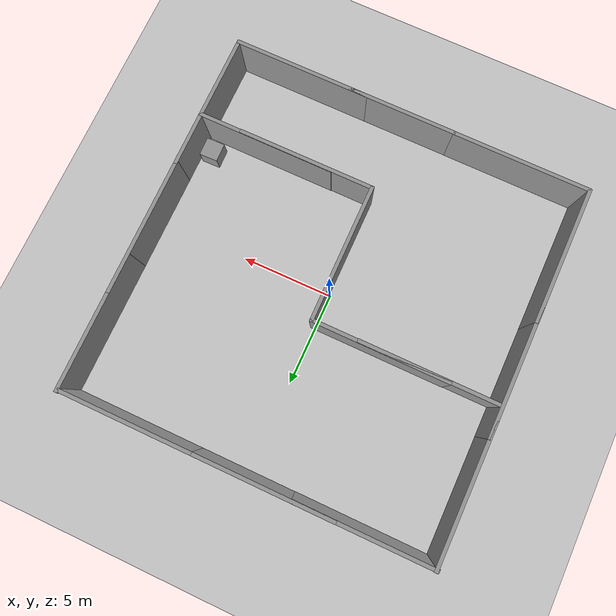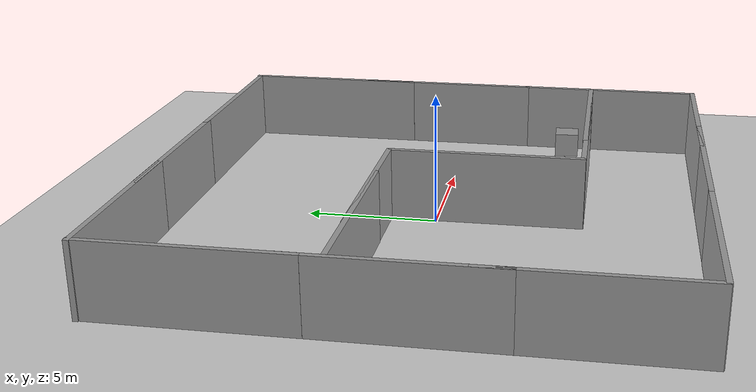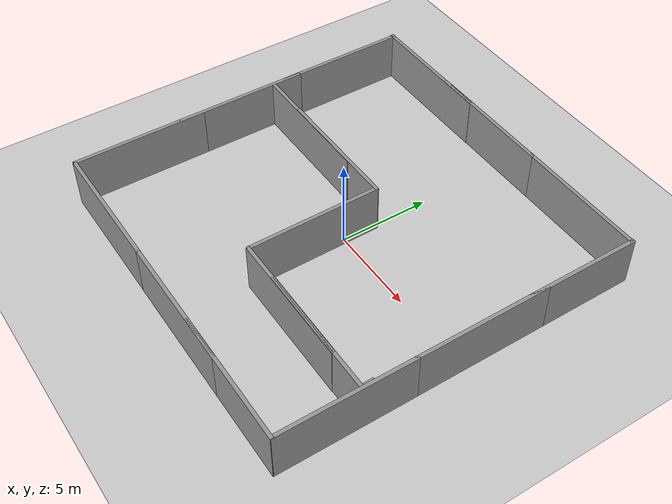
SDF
<sdf version="1.7">
 <world name="default">
  <light name="sun" type="directional">
   <pose>0 0 10 0 -0 0</pose>
   <diffuse>0.8 0.8 0.8 1</diffuse>
   <specular>0.2 0.2 0.2 1</specular>
   <attenuation>
    <range>1000</range>
    <constant>0.9</constant>
    <linear>0.01</linear>
    <quadratic>0.001</quadratic>
   </attenuation>
   <direction>-0.5 0.1 -0.9</direction>
   <spot><inner_angle>0</inner_angle><outer_angle>0</outer_angle><falloff>0</falloff></spot>
  </light>
  <model name="ground_plane">
   <static>1</static>
   <link name="link">
    <collision name="collision">
     <geometry><plane><normal>0 0 1</normal><size>100 100</size></plane></geometry>
     <surface>
      <contact><collide_bitmask>65535</collide_bitmask></contact>
      <friction><ode><mu>100</mu><mu2>50</mu2></ode></friction>
     </surface>
    </collision>
    <visual name="visual">
     <cast_shadows>0</cast_shadows>
     <geometry><plane><normal>0 0 1</normal><size>100 100</size></plane></geometry>
     <material>
      <script><uri>file://media/materials/scripts/gazebo.material</uri><name>Gazebo/Grey</name></script>
     </material>
    </visual>
   </link>
  </model>
  <gravity>0 0 -9.8</gravity>
  <magnetic_field>6e-06 2.3e-05 -4.2e-05</magnetic_field>
  <atmosphere type="adiabatic"/>
  <physics type="ode">
   <max_step_size>0.001</max_step_size>
   <real_time_factor>1</real_time_factor>
   <real_time_update_rate>1000</real_time_update_rate>
  </physics>
  <scene><ambient>0.4 0.4 0.4 1</ambient><background>0.7 0.7 0.7 1</background><shadows>1</shadows></scene>
  <spherical_coordinates>
   <surface_model>EARTH_WGS84</surface_model>
   <latitude_deg>0</latitude_deg>
   <longitude_deg>0</longitude_deg>
   <elevation>0</elevation>
   <heading_deg>0</heading_deg>
  </spherical_coordinates>
  <model name="grey_wall">
   <static>1</static>
   <link name="link">
    <pose>0 0 1.4 0 -0 0</pose>
    <collision name="collision"><geometry><box><size>7.5 0.2 2.8</size></box></geometry></collision>
    <visual name="visual">
     <cast_shadows>0</cast_shadows>
     <geometry><box><size>7.5 0.2 2.8</size></box></geometry>
     <material>
      <script>
       <uri>model://grey_wall/materials/scripts</uri>
       <uri>model://grey_wall/materials/textures</uri>
       <name>vrc/grey_wall</name>
      </script>
     </material>
    </visual>
   </link>
   <pose>-6.05595 1.81297 0 0 -0 0</pose>
  </model>
  <model name="grey_wall_0">
   <static>1</static>
   <link name="link">
    <pose>0 0 1.4 0 -0 0</pose>
    <collision name="collision"><geometry><box><size>7.5 0.2 2.8</size></box></geometry></collision>
    <visual name="visual">
     <cast_shadows>0</cast_shadows>
     <geometry><box><size>7.5 0.2 2.8</size></box></geometry>
     <material>
      <script>
       <uri>model://grey_wall/materials/scripts</uri>
       <uri>model://grey_wall/materials/textures</uri>
       <name>vrc/grey_wall</name>
      </script>
     </material>
    </visual>
   </link>
   <pose>-9.90034 6.29751 0 0 0 -1.57131</pose>
  </model>
  <model name="grey_wall_0_clone">
   <static>1</static>
   <link name="link">
    <pose>0 0 1.4 0 -0 0</pose>
    <collision name="collision"><geometry><box><size>7.5 0.2 2.8</size></box></geometry></collision>
    <visual name="visual">
     <cast_shadows>0</cast_shadows>
     <geometry><box><size>7.5 0.2 2.8</size></box></geometry>
     <material>
      <script>
       <uri>model://grey_wall/materials/scripts</uri>
       <uri>model://grey_wall/materials/textures</uri>
       <name>vrc/grey_wall</name>
      </script>
     </material>
    </visual>
   </link>
   <pose>-9.90034 -0.205896 0 0 0 -1.57131</pose>
  </model>
  <model name="grey_wall_0_clone_clone">
   <static>1</static>
   <link name="link">
    <pose>0 0 1.4 0 -0 0</pose>
    <collision name="collision"><geometry><box><size>7.5 0.2 2.8</size></box></geometry></collision>
    <visual name="visual">
     <cast_shadows>0</cast_shadows>
     <geometry><box><size>7.5 0.2 2.8</size></box></geometry>
     <material>
      <script>
       <uri>model://grey_wall/materials/scripts</uri>
       <uri>model://grey_wall/materials/textures</uri>
       <name>vrc/grey_wall</name>
      </script>
     </material>
    </visual>
   </link>
   <pose>-9.90034 -6.30135 0 0 0 -1.57131</pose>
  </model>
  <model name="grey_wall_clone">
   <static>1</static>
   <link name="link">
    <pose>0 0 1.4 0 -0 0</pose>
    <collision name="collision"><geometry><box><size>7.5 0.2 2.8</size></box></geometry></collision>
    <visual name="visual">
     <cast_shadows>0</cast_shadows>
     <geometry><box><size>7.5 0.2 2.8</size></box></geometry>
     <material>
      <script>
       <uri>model://grey_wall/materials/scripts</uri>
       <uri>model://grey_wall/materials/textures</uri>
       <name>vrc/grey_wall</name>
      </script>
     </material>
    </visual>
   </link>
   <pose>0.153536 -1.87302 -0 0 0 -1.56529</pose>
  </model>
  <model name="grey_wall_clone_0">
   <static>1</static>
   <link name="link">
    <pose>0 0 1.4 0 -0 0</pose>
    <collision name="collision"><geometry><box><size>7.5 0.2 2.8</size></box></geometry></collision>
    <visual name="visual">
     <cast_shadows>0</cast_shadows>
     <geometry><box><size>7.5 0.2 2.8</size></box></geometry>
     <material>
      <script>
       <uri>model://grey_wall/materials/scripts</uri>
       <uri>model://grey_wall/materials/textures</uri>
       <name>vrc/grey_wall</name>
      </script>
     </material>
    </visual>
   </link>
   <pose>6.15242 -5.51962 0 0 -0 0</pose>
  </model>
  <model name="grey_wall_clone_1">
   <static>1</static>
   <link name="link">
    <pose>0 0 1.4 0 -0 0</pose>
    <collision name="collision"><geometry><box><size>7.5 0.2 2.8</size></box></geometry></collision>
    <visual name="visual">
     <cast_shadows>0</cast_shadows>
     <geometry><box><size>7.5 0.2 2.8</size></box></geometry>
     <material>
      <script>
       <uri>model://grey_wall/materials/scripts</uri>
       <uri>model://grey_wall/materials/textures</uri>
       <name>vrc/grey_wall</name>
      </script>
     </material>
    </visual>
   </link>
   <pose>-6.18766 -9.98541 0 0 -0 0</pose>
  </model>
  <model name="grey_wall_clone_2">
   <static>1</static>
   <link name="link">
    <pose>0 0 1.4 0 -0 0</pose>
    <collision name="collision"><geometry><box><size>7.5 0.2 2.8</size></box></geometry></collision>
    <visual name="visual">
     <cast_shadows>0</cast_shadows>
     <geometry><box><size>7.5 0.2 2.8</size></box></geometry>
     <material>
      <script>
       <uri>model://grey_wall/materials/scripts</uri>
       <uri>model://grey_wall/materials/textures</uri>
       <name>vrc/grey_wall</name>
      </script>
     </material>
    </visual>
   </link>
   <pose>1.21365 -9.99395 0 0 -0 0</pose>
  </model>
  <model name="grey_wall_clone_3">
   <static>1</static>
   <link name="link">
    <pose>0 0 1.4 0 -0 0</pose>
    <collision name="collision"><geometry><box><size>7.5 0.2 2.8</size></box></geometry></collision>
    <visual name="visual">
     <cast_shadows>0</cast_shadows>
     <geometry><box><size>7.5 0.2 2.8</size></box></geometry>
     <material>
      <script>
       <uri>model://grey_wall/materials/scripts</uri>
       <uri>model://grey_wall/materials/textures</uri>
       <name>vrc/grey_wall</name>
      </script>
     </material>
    </visual>
   </link>
   <pose>6.15418 -9.99373 0 0 -0 0</pose>
  </model>
  <model name="grey_wall_clone_0_clone">
   <static>1</static>
   <link name="link">
    <pose>0 0 1.4 0 -0 0</pose>
    <collision name="collision"><geometry><box><size>7.5 0.2 2.8</size></box></geometry></collision>
    <visual name="visual">
     <cast_shadows>0</cast_shadows>
     <geometry><box><size>7.5 0.2 2.8</size></box></geometry>
     <material>
      <script>
       <uri>model://grey_wall/materials/scripts</uri>
       <uri>model://grey_wall/materials/textures</uri>
       <name>vrc/grey_wall</name>
      </script>
     </material>
    </visual>
   </link>
   <pose>3.84425 -5.53985 0 0 -0 0</pose>
  </model>
  <model name="grey_wall_clone_0_clone_0">
   <static>1</static>
   <link name="link">
    <pose>0 0 1.4 0 -0 0</pose>
    <collision name="collision"><geometry><box><size>7.5 0.2 2.8</size></box></geometry></collision>
    <visual name="visual">
     <cast_shadows>0</cast_shadows>
     <geometry><box><size>7.5 0.2 2.8</size></box></geometry>
     <material>
      <script>
       <uri>model://grey_wall/materials/scripts</uri>
       <uri>model://grey_wall/materials/textures</uri>
       <name>vrc/grey_wall</name>
      </script>
     </material>
    </visual>
   </link>
   <pose>-3.51777 1.83066 0 0 -0 0</pose>
  </model>
  <model name="grey_wall_0_clone_0">
   <static>1</static>
   <link name="link">
    <pose>0 0 1.4 0 -0 0</pose>
    <collision name="collision"><geometry><box><size>7.5 0.2 2.8</size></box></geometry></collision>
    <visual name="visual">
     <cast_shadows>0</cast_shadows>
     <geometry><box><size>7.5 0.2 2.8</size></box></geometry>
     <material>
      <script>
       <uri>model://grey_wall/materials/scripts</uri>
       <uri>model://grey_wall/materials/textures</uri>
       <name>vrc/grey_wall</name>
      </script>
     </material>
    </visual>
   </link>
   <pose>9.82047 -6.31627 0 0 0 -1.57131</pose>
  </model>
  <model name="grey_wall_0_clone_1">
   <static>1</static>
   <link name="link">
    <pose>0 0 1.4 0 -0 0</pose>
    <collision name="collision"><geometry><box><size>7.5 0.2 2.8</size></box></geometry></collision>
    <visual name="visual">
     <cast_shadows>0</cast_shadows>
     <geometry><box><size>7.5 0.2 2.8</size></box></geometry>
     <material>
      <script>
       <uri>model://grey_wall/materials/scripts</uri>
       <uri>model://grey_wall/materials/textures</uri>
       <name>vrc/grey_wall</name>
      </script>
     </material>
    </visual>
   </link>
   <pose>9.82047 1.02648 0 0 0 -1.57131</pose>
  </model>
  <model name="grey_wall_0_clone_2">
   <static>1</static>
   <link name="link">
    <pose>0 0 1.4 0 -0 0</pose>
    <collision name="collision"><geometry><box><size>7.5 0.2 2.8</size></box></geometry></collision>
    <visual name="visual">
     <cast_shadows>0</cast_shadows>
     <geometry><box><size>7.5 0.2 2.8</size></box></geometry>
     <material>
      <script>
       <uri>model://grey_wall/materials/scripts</uri>
       <uri>model://grey_wall/materials/textures</uri>
       <name>vrc/grey_wall</name>
      </script>
     </material>
    </visual>
   </link>
   <pose>9.82047 6.33268 0 0 0 -1.57131</pose>
  </model>
  <model name="grey_wall_clone_3_clone">
   <static>1</static>
   <link name="link">
    <pose>0 0 1.4 0 -0 0</pose>
    <collision name="collision"><geometry><box><size>7.5 0.2 2.8</size></box></geometry></collision>
    <visual name="visual">
     <cast_shadows>0</cast_shadows>
     <geometry><box><size>7.5 0.2 2.8</size></box></geometry>
     <material>
      <script>
       <uri>model://grey_wall/materials/scripts</uri>
       <uri>model://grey_wall/materials/textures</uri>
       <name>vrc/grey_wall</name>
      </script>
     </material>
    </visual>
   </link>
   <pose>6.07906 9.94242 0 0 -0 0</pose>
  </model>
  <model name="grey_wall_clone_3_clone_0">
   <static>1</static>
   <link name="link">
    <pose>0 0 1.4 0 -0 0</pose>
    <collision name="collision"><geometry><box><size>7.5 0.2 2.8</size></box></geometry></collision>
    <visual name="visual">
     <cast_shadows>0</cast_shadows>
     <geometry><box><size>7.5 0.2 2.8</size></box></geometry>
     <material>
      <script>
       <uri>model://grey_wall/materials/scripts</uri>
       <uri>model://grey_wall/materials/textures</uri>
       <name>vrc/grey_wall</name>
      </script>
     </material>
    </visual>
   </link>
   <pose>-1.11806 9.93965 0 0 -0 0</pose>
  </model>
  <model name="grey_wall_clone_3_clone_1">
   <static>1</static>
   <link name="link">
    <pose>0 0 1.4 0 -0 0</pose>
    <collision name="collision"><geometry><box><size>7.5 0.2 2.8</size></box></geometry></collision>
    <visual name="visual">
     <cast_shadows>0</cast_shadows>
     <geometry><box><size>7.5 0.2 2.8</size></box></geometry>
     <material>
      <script>
       <uri>model://grey_wall/materials/scripts</uri>
       <uri>model://grey_wall/materials/textures</uri>
       <name>vrc/grey_wall</name>
      </script>
     </material>
    </visual>
   </link>
   <pose>-6.29369 9.92749 0 0 -0 0</pose>
  </model>
  <model name="unit_box">
   <pose>9.06478 -4.55984 0.499995 1e-05 0 0.02991</pose>
   <link name="link">
    <inertial>
     <mass>1</mass>
     <inertia>
      <ixx>0.166667</ixx>
      <ixy>0</ixy>
      <ixz>0</ixz>
      <iyy>0.166667</iyy>
      <iyz>0</iyz>
      <izz>0.166667</izz>
     </inertia>
    </inertial>
    <collision name="collision"><geometry><box><size>1 1 1</size></box></geometry></collision>
    <visual name="visual">
     <geometry><box><size>1 1 1</size></box></geometry>
     <material>
      <script><name>Gazebo/Grey</name><uri>file://media/materials/scripts/gazebo.material</uri></script>
     </material>
    </visual>
   </link>
  </model>
 </world>
</sdf>
